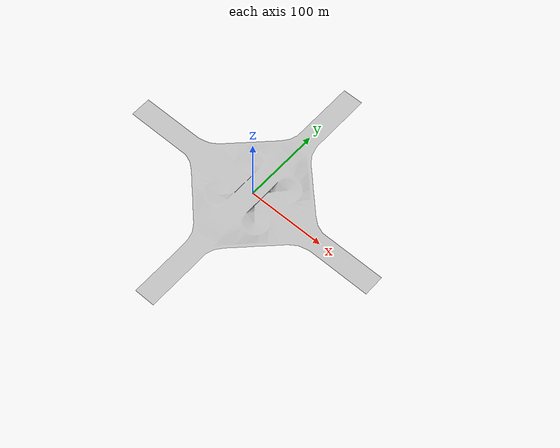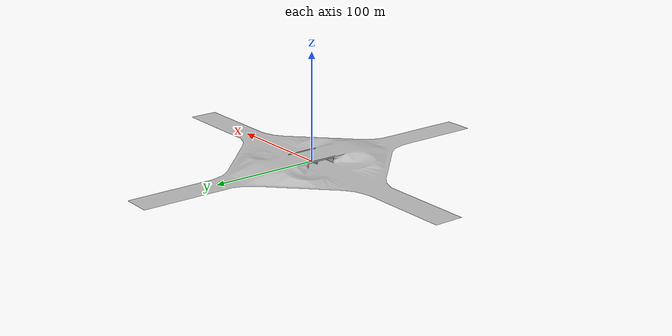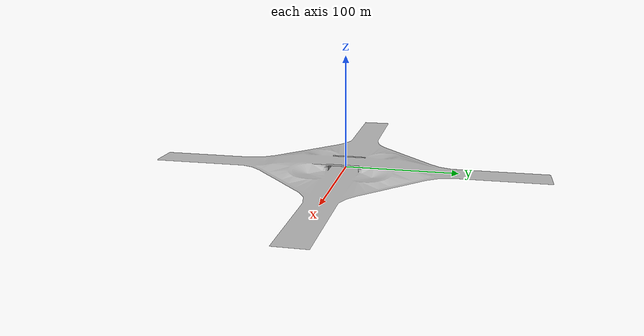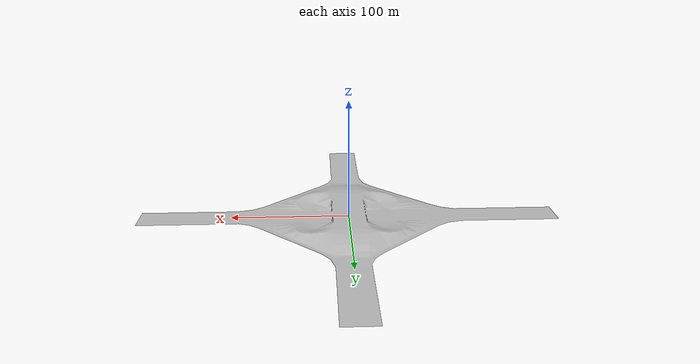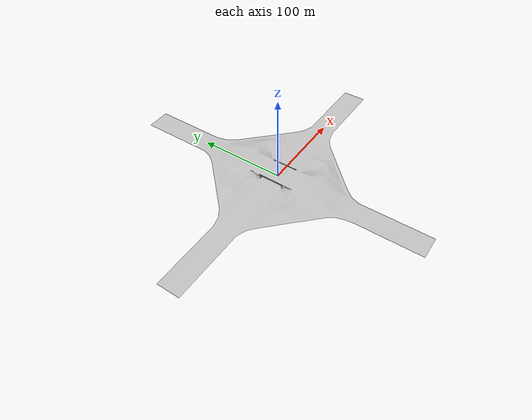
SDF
<?xml version="1.0" ?>
<sdf version="1.5">
  <model name="cloverleaf_interchange">
    <static>true</static>
    <link name="link">
      <collision name="collision">
        <geometry>
          <mesh>
            <uri>model://cloverleaf_interchange/meshes/cloverleaf.obj</uri>
            <scale>0.0254 0.0254 0.0254</scale>
          </mesh>
        </geometry>
      </collision>
      <visual name="visual">
        <geometry>
          <mesh>
            <uri>model://cloverleaf_interchange/meshes/cloverleaf.obj</uri>
            <scale>0.0254 0.0254 0.0254</scale>
          </mesh>
        </geometry>
      </visual>
    </link>
  </model>
</sdf>
